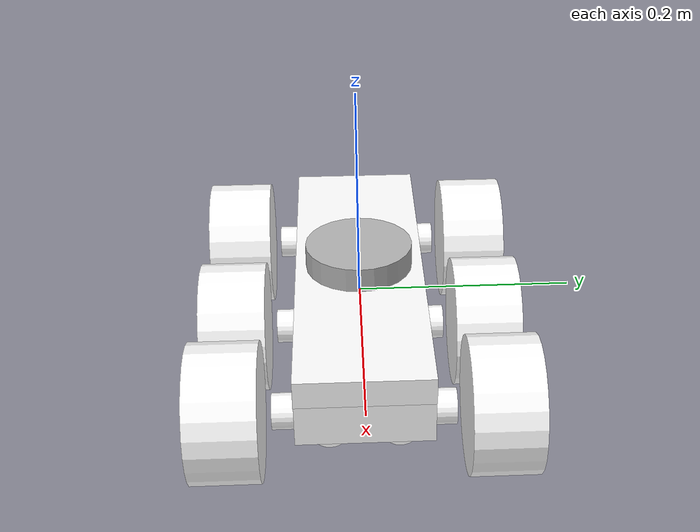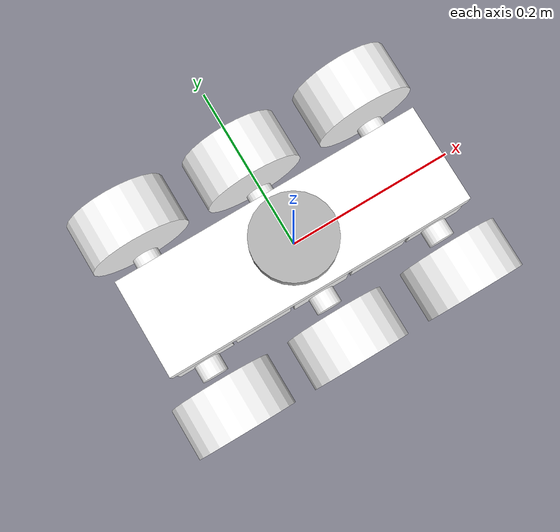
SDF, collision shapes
<sdf version="1.9">
 <model name="wildthumper">
  <static>0</static>
  <link name="base_link">
   <inertial>
    <mass>0.01</mass>
    <inertia><ixx>0.01</ixx><ixy>0</ixy><ixz>0</ixz><iyy>0.01</iyy><iyz>0</iyz><izz>0.01</izz></inertia>
   </inertial>
   <collision name="base_link_collision">
    <geometry><box><size>0.001 0.001 0.001</size></box></geometry>
   </collision>
   <visual name="base_link_visual">
    <geometry><box><size>0.001 0.001 0.001</size></box></geometry>
    <material><diffuse>1 0.3125 0 1</diffuse><ambient>1 0.3125 0 1</ambient></material>
   </visual>
   <sensor name="camera_sensor" type="camera">
    <pose>0.1 0 0.15 0 0.2 0</pose>
    <camera>
     <horizontal_fov>1.39626</horizontal_fov>
     <image><width>640</width><height>480</height><format>R8G8B8</format></image>
     <clip><near>0.02</near><far>300</far></clip>
    </camera>
    <always_on>1</always_on>
    <update_rate>30</update_rate>
    <visualize>true</visualize>
    <topic>/camera</topic>
   </sensor>
  </link>
  <link name="lidar_link">
   <inertial>
    <mass>0.1</mass>
    <inertia><ixx>0.0001</ixx><ixy>0</ixy><ixz>0</ixz><iyy>0.0001</iyy><iyz>0</iyz><izz>0.0001</izz></inertia>
   </inertial>
   <collision name="lidar_link_collision">
    <geometry><cylinder><radius>0.05</radius><length>0.1</length></cylinder></geometry>
   </collision>
   <visual name="lidar_link_visual">
    <geometry><cylinder><radius>0.05</radius><length>0.1</length></cylinder></geometry>
    <material>
     <ambient>0.2 0.2 0.2 1</ambient>
     <diffuse>0.7 0.7 0.7 1</diffuse>
     <specular>0.1 0.1 0.1 1</specular>
    </material>
   </visual>
   <sensor name="gpu_lidar" type="gpu_lidar">
    <pose>0 0 0.05 0 0 0</pose>
    <topic>/lidar</topic>
    <update_rate>10</update_rate>
    <ray>
     <scan>
      <horizontal>
       <samples>360</samples>
       <resolution>1</resolution>
       <min_angle>-3.14</min_angle>
       <max_angle>3.14</max_angle>
      </horizontal>
      <vertical>
       <samples>1</samples>
       <resolution>1</resolution>
       <min_angle>0</min_angle>
       <max_angle>0</max_angle>
      </vertical>
     </scan>
     <range><min>0.005</min><max>10.0</max><resolution>0.001</resolution></range>
    </ray>
    <always_on>1</always_on>
    <visualize>true</visualize>
   </sensor>
  </link>
  <joint name="lidar_joint" type="fixed"><parent>top_chassis_link</parent><child>lidar_link</child></joint>
  <joint name="front_small_chassis_joint" type="fixed">
   <pose relative_to="base_link">0.075 0 -0.02 0 0 0</pose>
   <parent>base_link</parent>
   <child>front_small_chassis_link</child>
   <axis>
    <dynamics><damping>1.0</damping></dynamics>
    <xyz>0 0 1</xyz>
    <limit><lower>-1e16</lower><upper>1e16</upper></limit>
   </axis>
  </joint>
  <link name="front_small_chassis_link">
   <pose relative_to="front_small_chassis_joint">0 0 0 0 0 0</pose>
   <inertial>
    <mass>0.2</mass>
    <inertia>
     <ixx>0.0002666666666666667</ixx>
     <ixy>0</ixy>
     <ixz>0</ixz>
     <iyy>0.0001083333333333333</iyy>
     <iyz>0</iyz>
     <izz>0.0003216666666666667</izz>
    </inertia>
   </inertial>
   <collision name="front_small_chassis_link_collision">
    <geometry><box><size>0.07000000000000001 0.12 0.04</size></box></geometry>
   </collision>
   <visual name="front_small_chassis_link_visual">
    <geometry>
     <mesh>
      <scale>1 1 1</scale>
      <uri>model://wildthumper/meshes/bases/small_chassis_with_frame_connector.dae</uri>
     </mesh>
    </geometry>
    <material>
     <ambient>1 1 1</ambient>
     <diffuse>1 1 1</diffuse>
     <specular>1 1 1</specular>
     <pbr>
      <metal>
       <albedo_map>model://wildthumper/materials/textures/black_metal/black_metal_diffuse.jpg</albedo_map>
       <metalness_map>model://wildthumper/materials/textures/black_metal/black_metal_metallic.jpg</metalness_map>
       <normal_map>model://wildthumper/materials/textures/black_metal/black_metal_normal.jpg</normal_map>
       <roughness_map>model://wildthumper/materials/textures/black_metal/black_metal_roughness.jpg</roughness_map>
       <roughness>1.0</roughness>
       <metalness>1.0</metalness>
      </metal>
     </pbr>
    </material>
   </visual>
  </link>
  <joint name="front_wheel_chassis_short_joint" type="fixed">
   <pose relative_to="base_link">0.15 0 -0.02 0 0 0</pose>
   <parent>base_link</parent>
   <child>front_wheel_chassis_short_link</child>
   <axis>
    <dynamics><damping>1.0</damping></dynamics>
    <xyz>0 0 1</xyz>
    <limit><lower>-1e16</lower><upper>1e16</upper></limit>
   </axis>
  </joint>
  <link name="front_wheel_chassis_short_link">
   <pose relative_to="front_wheel_chassis_short_joint">0 0 0 0 0 0</pose>
   <inertial>
    <mass>0.2</mass>
    <inertia>
     <ixx>0.0002666666666666667</ixx>
     <ixy>0</ixy>
     <ixz>0</ixz>
     <iyy>0.0001083333333333333</iyy>
     <iyz>0</iyz>
     <izz>0.0003216666666666667</izz>
    </inertia>
   </inertial>
   <collision name="front_wheel_chassis_short_link_collision">
    <geometry><box><size>0.07000000000000001 0.12 0.04</size></box></geometry>
   </collision>
   <visual name="front_wheel_chassis_short_link_visual">
    <geometry>
     <mesh><scale>1 1 1</scale><uri>model://wildthumper/meshes/bases/wheel_chassis_short.dae</uri></mesh>
    </geometry>
    <material>
     <ambient>1 1 1</ambient>
     <diffuse>1 1 1</diffuse>
     <specular>1 1 1</specular>
     <pbr>
      <metal>
       <albedo_map>model://wildthumper/materials/textures/black_metal/black_metal_diffuse.jpg</albedo_map>
       <metalness_map>model://wildthumper/materials/textures/black_metal/black_metal_metallic.jpg</metalness_map>
       <normal_map>model://wildthumper/materials/textures/black_metal/black_metal_normal.jpg</normal_map>
       <roughness_map>model://wildthumper/materials/textures/black_metal/black_metal_roughness.jpg</roughness_map>
       <roughness>1.0</roughness>
       <metalness>1.0</metalness>
      </metal>
     </pbr>
    </material>
   </visual>
  </link>
  <joint name="front_left_motor_asm_joint" type="revolute">
   <pose relative_to="front_wheel_chassis_short_link">0 0.03 -0.01 0 0 0</pose>
   <parent>front_wheel_chassis_short_link</parent>
   <child>front_left_motor_asm_link</child>
   <axis>
    <xyz>1 0 0</xyz>
    <limit><lower>-0.5</lower><upper>0.5</upper><effort>50</effort><velocity>10</velocity></limit>
    <dynamics>
     <damping>0.7</damping>
     <friction>0</friction>
     <spring_reference>0</spring_reference>
     <spring_stiffness>3</spring_stiffness>
    </dynamics>
   </axis>
   <physics>
    <provide_feedback>true</provide_feedback>
    <ode>
     <implicit_spring_damper>true</implicit_spring_damper>
     <cfm_damping>true</cfm_damping>
     <limit><cfm>0.0</cfm><erp>0.2</erp></limit>
     <provide_feedback>true</provide_feedback>
    </ode>
   </physics>
  </joint>
  <link name="front_left_motor_asm_link">
   <pose relative_to="front_left_motor_asm_joint">0 0 0 0 0 0</pose>
   <inertial>
    <pose degrees="true">0 0.025 0 90 0 0</pose>
    <mass>0.1</mass>
    <inertia>
     <ixx>2.723333333333334e-05</ixx>
     <ixy>0</ixy>
     <ixz>0</ixz>
     <iyy>2.723333333333334e-05</iyy>
     <iyz>0</iyz>
     <izz>1.28e-05</izz>
    </inertia>
   </inertial>
   <collision name="front_left_motor_asm_link_collision">
    <pose degrees="true">0 0 0 0 90 0</pose>
    <geometry><cylinder><length>0.064</length><radius>0.016</radius></cylinder></geometry>
   </collision>
   <collision name="front_left_motor_asm_link_collision_1">
    <pose degrees="true">0 0.025 0 90 0 0</pose>
    <geometry><cylinder><length>0.05</length><radius>0.016</radius></cylinder></geometry>
   </collision>
   <visual name="front_left_motor_asm_link_visual">
    <geometry>
     <mesh><scale>1 1 1</scale><uri>model://wildthumper/meshes/bases/left_motor_asm.dae</uri></mesh>
    </geometry>
    <material>
     <ambient>1 1 1</ambient>
     <diffuse>1 1 1</diffuse>
     <specular>1 1 1</specular>
     <pbr>
      <metal>
       <albedo_map>model://wildthumper/materials/textures/black_metal/black_metal_diffuse.jpg</albedo_map>
       <metalness_map>model://wildthumper/materials/textures/black_metal/black_metal_metallic.jpg</metalness_map>
       <normal_map>model://wildthumper/materials/textures/black_metal/black_metal_normal.jpg</normal_map>
       <roughness_map>model://wildthumper/materials/textures/black_metal/black_metal_roughness.jpg</roughness_map>
       <roughness>1.0</roughness>
       <metalness>1.0</metalness>
      </metal>
     </pbr>
    </material>
   </visual>
  </link>
  <joint name="front_left_wheel_joint" type="revolute">
   <pose relative_to="front_left_motor_asm_link">0 0.09 0 0 0 0</pose>
   <parent>front_left_motor_asm_link</parent>
   <child>front_left_wheel_link</child>
   <axis>
    <xyz>0 1 0</xyz>
    <limit><lower>-1e16</lower><upper>1e16</upper></limit>
    <dynamics><damping>0.02</damping></dynamics>
   </axis>
  </joint>
  <link name="front_left_wheel_link">
   <pose relative_to="front_left_wheel_joint">0 0 0 0 0 0</pose>
   <inertial>
    <pose degrees="true">0 0 0 90 0 0</pose>
    <mass>0.19</mass>
    <inertia>
     <ixx>0.0002022409166666667</ixx>
     <ixy>0</ixy>
     <ixz>0</ixz>
     <iyy>0.0002022409166666667</iyy>
     <iyz>1.203706215242022e-35</iyz>
     <izz>0.0002973904999999999</izz>
    </inertia>
   </inertial>
   <collision name="front_left_wheel_link_collision">
    <pose degrees="true">0 0 0 90 0 0</pose>
    <geometry><cylinder><length>0.062</length><radius>0.062</radius></cylinder></geometry>
    <surface>
     <friction>
      <ode><mu>10.0</mu><mu2>5.0</mu2><fdir1>1 0 0</fdir1><slip1>0.0</slip1><slip2>0.0</slip2></ode>
     </friction>
    </surface>
   </collision>
   <collision name="front_left_wheel_link_fixed_joint_lump__front_left_wheel_adapter_link_collision_1">
    <pose degrees="true">0 0 0 90 0 0</pose>
    <geometry><cylinder><length>0.024</length><radius>0.005</radius></cylinder></geometry>
   </collision>
   <collision name="front_left_wheel_link_fixed_joint_lump__front_left_wheel_rim_link_collision_2">
    <pose degrees="true">0 0 0 90 0 0</pose>
    <geometry><cylinder><length>0.05</length><radius>0.03</radius></cylinder></geometry>
   </collision>
   <visual name="front_left_wheel_link_visual">
    <geometry>
     <mesh><scale>1 1 1</scale><uri>model://wildthumper/meshes/wheels/left_wheel_tyre.dae</uri></mesh>
    </geometry>
    <material>
     <ambient>1 1 1</ambient>
     <diffuse>1 1 1</diffuse>
     <specular>1 1 1</specular>
     <pbr>
      <metal>
       <albedo_map>model://wildthumper/materials/textures/rubber_01/rubber_01_diffuse.jpg</albedo_map>
       <normal_map>model://wildthumper/materials/textures/rubber_01/rubber_01_normal.jpg</normal_map>
       <roughness_map>model://wildthumper/materials/textures/rubber_01/rubber_01_roughness.jpg</roughness_map>
       <roughness>1.0</roughness>
       <metalness>0.0</metalness>
      </metal>
     </pbr>
    </material>
   </visual>
   <visual name="front_left_wheel_link_fixed_joint_lump__front_left_wheel_adapter_link_visual_1">
    <geometry>
     <mesh><scale>1 1 1</scale><uri>model://wildthumper/meshes/wheels/left_wheel_adapter.dae</uri></mesh>
    </geometry>
    <material>
     <ambient>1 1 1</ambient>
     <diffuse>1 1 1</diffuse>
     <specular>1 1 1</specular>
     <pbr>
      <metal>
       <albedo_map>model://wildthumper/materials/textures/silver_metal/silver_metal_diffuse.jpg</albedo_map>
       <metalness_map>model://wildthumper/materials/textures/silver_metal/silver_metal_metallic.jpg</metalness_map>
       <normal_map>model://wildthumper/materials/textures/silver_metal/silver_metal_normal.jpg</normal_map>
       <roughness_map>model://wildthumper/materials/textures/silver_metal/silver_metal_roughness.jpg</roughness_map>
       <roughness>1.0</roughness>
       <metalness>1.0</metalness>
      </metal>
     </pbr>
    </material>
   </visual>
   <visual name="front_left_wheel_link_fixed_joint_lump__front_left_wheel_rim_link_visual_2">
    <geometry>
     <mesh><scale>1 1 1</scale><uri>model://wildthumper/meshes/wheels/left_wheel_rim.dae</uri></mesh>
    </geometry>
    <material>
     <ambient>1 1 1</ambient>
     <diffuse>1 1 1</diffuse>
     <specular>1 1 1</specular>
     <pbr>
      <metal>
       <albedo_map>model://wildthumper/materials/textures/red_metal/red_metal_diffuse.jpg</albedo_map>
       <metalness_map>model://wildthumper/materials/textures/red_metal/red_metal_metallic.jpg</metalness_map>
       <normal_map>model://wildthumper/materials/textures/red_metal/red_metal_normal.jpg</normal_map>
       <roughness_map>model://wildthumper/materials/textures/red_metal/red_metal_roughness.jpg</roughness_map>
       <roughness>1.0</roughness>
       <metalness>1.0</metalness>
      </metal>
     </pbr>
    </material>
   </visual>
  </link>
  <joint name="front_right_motor_asm_joint" type="revolute">
   <pose relative_to="front_wheel_chassis_short_link">0 -0.03 -0.01 0 0 0</pose>
   <parent>front_wheel_chassis_short_link</parent>
   <child>front_right_motor_asm_link</child>
   <axis>
    <xyz>1 0 0</xyz>
    <limit><lower>-0.5</lower><upper>0.5</upper><effort>50</effort><velocity>10</velocity></limit>
    <dynamics>
     <damping>0.7</damping>
     <friction>0</friction>
     <spring_reference>0</spring_reference>
     <spring_stiffness>3</spring_stiffness>
    </dynamics>
   </axis>
  </joint>
  <link name="front_right_motor_asm_link">
   <pose relative_to="front_right_motor_asm_joint">0 0 0 0 0 0</pose>
   <inertial>
    <pose degrees="true">0 -0.025 0 90 0 0</pose>
    <mass>0.1</mass>
    <inertia>
     <ixx>2.723333333333334e-05</ixx>
     <ixy>0</ixy>
     <ixz>0</ixz>
     <iyy>2.723333333333334e-05</iyy>
     <iyz>0</iyz>
     <izz>1.28e-05</izz>
    </inertia>
   </inertial>
   <collision name="front_right_motor_asm_link_collision">
    <pose degrees="true">0 0 0 0 90 0</pose>
    <geometry><cylinder><length>0.064</length><radius>0.016</radius></cylinder></geometry>
   </collision>
   <collision name="front_right_motor_asm_link_collision_1">
    <pose degrees="true">0 -0.025 0 90 0 0</pose>
    <geometry><cylinder><length>0.05</length><radius>0.016</radius></cylinder></geometry>
   </collision>
   <visual name="front_right_motor_asm_link_visual">
    <geometry>
     <mesh><scale>1 1 1</scale><uri>model://wildthumper/meshes/bases/right_motor_asm.dae</uri></mesh>
    </geometry>
    <material>
     <ambient>1 1 1</ambient>
     <diffuse>1 1 1</diffuse>
     <specular>1 1 1</specular>
     <pbr>
      <metal>
       <albedo_map>model://wildthumper/materials/textures/black_metal/black_metal_diffuse.jpg</albedo_map>
       <metalness_map>model://wildthumper/materials/textures/black_metal/black_metal_metallic.jpg</metalness_map>
       <normal_map>model://wildthumper/materials/textures/black_metal/black_metal_normal.jpg</normal_map>
       <roughness_map>model://wildthumper/materials/textures/black_metal/black_metal_roughness.jpg</roughness_map>
       <roughness>1.0</roughness>
       <metalness>1.0</metalness>
      </metal>
     </pbr>
    </material>
   </visual>
  </link>
  <joint name="front_right_wheel_joint" type="revolute">
   <pose relative_to="front_right_motor_asm_link">0 -0.09 0 0 0 0</pose>
   <parent>front_right_motor_asm_link</parent>
   <child>front_right_wheel_link</child>
   <axis>
    <xyz>0 1 0</xyz>
    <limit><lower>-1e16</lower><upper>1e16</upper></limit>
    <dynamics><damping>0.02</damping></dynamics>
   </axis>
  </joint>
  <link name="front_right_wheel_link">
   <pose relative_to="front_right_wheel_joint">0 0 0 0 0 0</pose>
   <inertial>
    <pose degrees="true">0 0 0 90 0 0</pose>
    <mass>0.19</mass>
    <inertia>
     <ixx>0.0002022409166666667</ixx>
     <ixy>0</ixy>
     <ixz>0</ixz>
     <iyy>0.0002022409166666667</iyy>
     <iyz>1.203706215242022e-35</iyz>
     <izz>0.0002973904999999999</izz>
    </inertia>
   </inertial>
   <collision name="front_right_wheel_link_collision">
    <pose degrees="true">0 0 0 90 0 0</pose>
    <geometry><cylinder><length>0.062</length><radius>0.062</radius></cylinder></geometry>
    <surface>
     <friction>
      <ode><mu>10.0</mu><mu2>5.0</mu2><fdir1>1 0 0</fdir1><slip1>0.0</slip1><slip2>0.0</slip2></ode>
     </friction>
    </surface>
   </collision>
   <collision name="front_right_wheel_link_fixed_joint_lump__front_right_wheel_adapter_link_collision_1">
    <pose degrees="true">0 0 0 90 0 0</pose>
    <geometry><cylinder><length>0.024</length><radius>0.005</radius></cylinder></geometry>
   </collision>
   <collision name="front_right_wheel_link_fixed_joint_lump__front_right_wheel_rim_link_collision_2">
    <pose degrees="true">0 0 0 90 0 0</pose>
    <geometry><cylinder><length>0.05</length><radius>0.03</radius></cylinder></geometry>
   </collision>
   <visual name="front_right_wheel_link_visual">
    <geometry>
     <mesh><scale>1 1 1</scale><uri>model://wildthumper/meshes/wheels/right_wheel_tyre.dae</uri></mesh>
    </geometry>
    <material>
     <ambient>1 1 1</ambient>
     <diffuse>1 1 1</diffuse>
     <specular>1 1 1</specular>
     <pbr>
      <metal>
       <albedo_map>model://wildthumper/materials/textures/rubber_01/rubber_01_diffuse.jpg</albedo_map>
       <normal_map>model://wildthumper/materials/textures/rubber_01/rubber_01_normal.jpg</normal_map>
       <roughness_map>model://wildthumper/materials/textures/rubber_01/rubber_01_roughness.jpg</roughness_map>
       <roughness>1.0</roughness>
       <metalness>0.0</metalness>
      </metal>
     </pbr>
    </material>
   </visual>
   <visual name="front_right_wheel_link_fixed_joint_lump__front_right_wheel_adapter_link_visual_1">
    <geometry>
     <mesh><scale>1 1 1</scale><uri>model://wildthumper/meshes/wheels/right_wheel_adapter.dae</uri></mesh>
    </geometry>
    <material>
     <ambient>1 1 1</ambient>
     <diffuse>1 1 1</diffuse>
     <specular>1 1 1</specular>
     <pbr>
      <metal>
       <albedo_map>model://wildthumper/materials/textures/silver_metal/silver_metal_diffuse.jpg</albedo_map>
       <metalness_map>model://wildthumper/materials/textures/silver_metal/silver_metal_metallic.jpg</metalness_map>
       <normal_map>model://wildthumper/materials/textures/silver_metal/silver_metal_normal.jpg</normal_map>
       <roughness_map>model://wildthumper/materials/textures/silver_metal/silver_metal_roughness.jpg</roughness_map>
       <roughness>1.0</roughness>
       <metalness>1.0</metalness>
      </metal>
     </pbr>
    </material>
   </visual>
   <visual name="front_right_wheel_link_fixed_joint_lump__front_right_wheel_rim_link_visual_2">
    <geometry>
     <mesh><scale>1 1 1</scale><uri>model://wildthumper/meshes/wheels/right_wheel_rim.dae</uri></mesh>
    </geometry>
    <material>
     <ambient>1 1 1</ambient>
     <diffuse>1 1 1</diffuse>
     <specular>1 1 1</specular>
     <pbr>
      <metal>
       <albedo_map>model://wildthumper/materials/textures/red_metal/red_metal_diffuse.jpg</albedo_map>
       <metalness_map>model://wildthumper/materials/textures/red_metal/red_metal_metallic.jpg</metalness_map>
       <normal_map>model://wildthumper/materials/textures/red_metal/red_metal_normal.jpg</normal_map>
       <roughness_map>model://wildthumper/materials/textures/red_metal/red_metal_roughness.jpg</roughness_map>
       <roughness>1.0</roughness>
       <metalness>1.0</metalness>
      </metal>
     </pbr>
    </material>
   </visual>
  </link>
  <joint name="mid_wheel_chassis_long_joint" type="fixed">
   <pose relative_to="base_link">0 0 -0.025 0 0 0</pose>
   <parent>base_link</parent>
   <child>mid_wheel_chassis_long_link</child>
   <axis>
    <dynamics><damping>1.0</damping></dynamics>
    <xyz>0 0 1</xyz>
    <limit><lower>-1e16</lower><upper>1e16</upper></limit>
   </axis>
  </joint>
  <link name="mid_wheel_chassis_long_link">
   <pose relative_to="mid_wheel_chassis_long_joint">0 0 0 0 0 0</pose>
   <inertial>
    <mass>0.2</mass>
    <inertia>
     <ixx>0.0002816666666666667</ixx>
     <ixy>0</ixy>
     <ixz>0</ixz>
     <iyy>0.0001233333333333334</iyy>
     <iyz>0</iyz>
     <izz>0.0003216666666666667</izz>
    </inertia>
   </inertial>
   <collision name="mid_wheel_chassis_long_link_collision">
    <geometry><box><size>0.07000000000000001 0.12 0.05</size></box></geometry>
   </collision>
   <visual name="mid_wheel_chassis_long_link_visual">
    <pose>0 0 0.005 0 0 0</pose>
    <geometry>
     <mesh><scale>1 1 1</scale><uri>model://wildthumper/meshes/bases/wheel_chassis_long.dae</uri></mesh>
    </geometry>
    <material>
     <ambient>1 1 1</ambient>
     <diffuse>1 1 1</diffuse>
     <specular>1 1 1</specular>
     <pbr>
      <metal>
       <albedo_map>model://wildthumper/materials/textures/black_metal/black_metal_diffuse.jpg</albedo_map>
       <metalness_map>model://wildthumper/materials/textures/black_metal/black_metal_metallic.jpg</metalness_map>
       <normal_map>model://wildthumper/materials/textures/black_metal/black_metal_normal.jpg</normal_map>
       <roughness_map>model://wildthumper/materials/textures/black_metal/black_metal_roughness.jpg</roughness_map>
       <roughness>1.0</roughness>
       <metalness>1.0</metalness>
      </metal>
     </pbr>
    </material>
   </visual>
  </link>
  <joint name="mid_left_motor_asm_joint" type="revolute">
   <pose relative_to="mid_wheel_chassis_long_link">0 0.03 -0.015 0 0 0</pose>
   <parent>mid_wheel_chassis_long_link</parent>
   <child>mid_left_motor_asm_link</child>
   <axis>
    <xyz>1 0 0</xyz>
    <limit><lower>-0.5</lower><upper>0.5</upper><effort>50</effort><velocity>10</velocity></limit>
    <dynamics>
     <damping>0.7</damping>
     <friction>0</friction>
     <spring_reference>0</spring_reference>
     <spring_stiffness>3</spring_stiffness>
    </dynamics>
   </axis>
  </joint>
  <link name="mid_left_motor_asm_link">
   <pose relative_to="mid_left_motor_asm_joint">0 0 0 0 0 0</pose>
   <inertial>
    <pose degrees="true">0 0.025 0 90 0 0</pose>
    <mass>0.1</mass>
    <inertia>
     <ixx>2.723333333333334e-05</ixx>
     <ixy>0</ixy>
     <ixz>0</ixz>
     <iyy>2.723333333333334e-05</iyy>
     <iyz>0</iyz>
     <izz>1.28e-05</izz>
    </inertia>
   </inertial>
   <collision name="mid_left_motor_asm_link_collision">
    <pose degrees="true">0 0 0 0 90 0</pose>
    <geometry><cylinder><length>0.064</length><radius>0.016</radius></cylinder></geometry>
   </collision>
   <collision name="mid_left_motor_asm_link_collision_1">
    <pose degrees="true">0 0.025 0 90 0 0</pose>
    <geometry><cylinder><length>0.05</length><radius>0.016</radius></cylinder></geometry>
   </collision>
   <visual name="mid_left_motor_asm_link_visual">
    <geometry>
     <mesh><scale>1 1 1</scale><uri>model://wildthumper/meshes/bases/left_motor_asm.dae</uri></mesh>
    </geometry>
    <material>
     <ambient>1 1 1</ambient>
     <diffuse>1 1 1</diffuse>
     <specular>1 1 1</specular>
     <pbr>
      <metal>
       <albedo_map>model://wildthumper/materials/textures/black_metal/black_metal_diffuse.jpg</albedo_map>
       <metalness_map>model://wildthumper/materials/textures/black_metal/black_metal_metallic.jpg</metalness_map>
       <normal_map>model://wildthumper/materials/textures/black_metal/black_metal_normal.jpg</normal_map>
       <roughness_map>model://wildthumper/materials/textures/black_metal/black_metal_roughness.jpg</roughness_map>
       <roughness>1.0</roughness>
       <metalness>1.0</metalness>
      </metal>
     </pbr>
    </material>
   </visual>
  </link>
  <joint name="mid_left_wheel_joint" type="revolute">
   <pose relative_to="mid_left_motor_asm_link">0 0.09 0 0 0 0</pose>
   <parent>mid_left_motor_asm_link</parent>
   <child>mid_left_wheel_link</child>
   <axis>
    <xyz>0 1 0</xyz>
    <limit><lower>-1e16</lower><upper>1e16</upper></limit>
    <dynamics><damping>0.02</damping></dynamics>
   </axis>
  </joint>
  <link name="mid_left_wheel_link">
   <pose relative_to="mid_left_wheel_joint">0 0 0 0 0 0</pose>
   <inertial>
    <pose degrees="true">0 0 0 90 0 0</pose>
    <mass>0.19</mass>
    <inertia>
     <ixx>0.0002022409166666667</ixx>
     <ixy>0</ixy>
     <ixz>0</ixz>
     <iyy>0.0002022409166666667</iyy>
     <iyz>1.203706215242022e-35</iyz>
     <izz>0.0002973904999999999</izz>
    </inertia>
   </inertial>
   <collision name="mid_left_wheel_link_collision">
    <pose degrees="true">0 0 0 90 0 0</pose>
    <geometry><cylinder><length>0.062</length><radius>0.062</radius></cylinder></geometry>
    <surface>
     <friction>
      <ode><mu>10.0</mu><mu2>5.0</mu2><fdir1>1 0 0</fdir1><slip1>0.0</slip1><slip2>0.0</slip2></ode>
     </friction>
    </surface>
   </collision>
   <collision name="mid_left_wheel_link_fixed_joint_lump__mid_left_wheel_adapter_link_collision_1">
    <pose degrees="true">0 0 0 90 0 0</pose>
    <geometry><cylinder><length>0.024</length><radius>0.005</radius></cylinder></geometry>
   </collision>
   <collision name="mid_left_wheel_link_fixed_joint_lump__mid_left_wheel_rim_link_collision_2">
    <pose degrees="true">0 0 0 90 0 0</pose>
    <geometry><cylinder><length>0.05</length><radius>0.03</radius></cylinder></geometry>
   </collision>
   <visual name="mid_left_wheel_link_visual">
    <geometry>
     <mesh><scale>1 1 1</scale><uri>model://wildthumper/meshes/wheels/left_wheel_tyre.dae</uri></mesh>
    </geometry>
    <material>
     <ambient>1 1 1</ambient>
     <diffuse>1 1 1</diffuse>
     <specular>1 1 1</specular>
     <pbr>
      <metal>
       <albedo_map>model://wildthumper/materials/textures/rubber_01/rubber_01_diffuse.jpg</albedo_map>
       <normal_map>model://wildthumper/materials/textures/rubber_01/rubber_01_normal.jpg</normal_map>
       <roughness_map>model://wildthumper/materials/textures/rubber_01/rubber_01_roughness.jpg</roughness_map>
       <roughness>1.0</roughness>
       <metalness>0.0</metalness>
      </metal>
     </pbr>
    </material>
   </visual>
   <visual name="mid_left_wheel_link_fixed_joint_lump__mid_left_wheel_adapter_link_visual_1">
    <geometry>
     <mesh><scale>1 1 1</scale><uri>model://wildthumper/meshes/wheels/left_wheel_adapter.dae</uri></mesh>
    </geometry>
    <material>
     <ambient>1 1 1</ambient>
     <diffuse>1 1 1</diffuse>
     <specular>1 1 1</specular>
     <pbr>
      <metal>
       <albedo_map>model://wildthumper/materials/textures/silver_metal/silver_metal_diffuse.jpg</albedo_map>
       <metalness_map>model://wildthumper/materials/textures/silver_metal/silver_metal_metallic.jpg</metalness_map>
       <normal_map>model://wildthumper/materials/textures/silver_metal/silver_metal_normal.jpg</normal_map>
       <roughness_map>model://wildthumper/materials/textures/silver_metal/silver_metal_roughness.jpg</roughness_map>
       <roughness>1.0</roughness>
       <metalness>1.0</metalness>
      </metal>
     </pbr>
    </material>
   </visual>
   <visual name="mid_left_wheel_link_fixed_joint_lump__mid_left_wheel_rim_link_visual_2">
    <geometry>
     <mesh><scale>1 1 1</scale><uri>model://wildthumper/meshes/wheels/left_wheel_rim.dae</uri></mesh>
    </geometry>
    <material>
     <ambient>1 1 1</ambient>
     <diffuse>1 1 1</diffuse>
     <specular>1 1 1</specular>
     <pbr>
      <metal>
       <albedo_map>model://wildthumper/materials/textures/red_metal/red_metal_diffuse.jpg</albedo_map>
       <metalness_map>model://wildthumper/materials/textures/red_metal/red_metal_metallic.jpg</metalness_map>
       <normal_map>model://wildthumper/materials/textures/red_metal/red_metal_normal.jpg</normal_map>
       <roughness_map>model://wildthumper/materials/textures/red_metal/red_metal_roughness.jpg</roughness_map>
       <roughness>1.0</roughness>
       <metalness>1.0</metalness>
      </metal>
     </pbr>
    </material>
   </visual>
  </link>
  <joint name="mid_right_motor_asm_joint" type="revolute">
   <pose relative_to="mid_wheel_chassis_long_link">0 -0.03 -0.015 0 0 0</pose>
   <parent>mid_wheel_chassis_long_link</parent>
   <child>mid_right_motor_asm_link</child>
   <axis>
    <xyz>1 0 0</xyz>
    <limit><lower>-0.5</lower><upper>0.5</upper><effort>50</effort><velocity>10</velocity></limit>
    <dynamics>
     <damping>0.7</damping>
     <friction>0</friction>
     <spring_reference>0</spring_reference>
     <spring_stiffness>3</spring_stiffness>
    </dynamics>
   </axis>
  </joint>
  <link name="mid_right_motor_asm_link">
   <pose relative_to="mid_right_motor_asm_joint">0 0 0 0 0 0</pose>
   <inertial>
    <pose degrees="true">0 -0.025 0 90 0 0</pose>
    <mass>0.1</mass>
    <inertia>
     <ixx>2.723333333333334e-05</ixx>
     <ixy>0</ixy>
     <ixz>0</ixz>
     <iyy>2.723333333333334e-05</iyy>
     <iyz>0</iyz>
     <izz>1.28e-05</izz>
    </inertia>
   </inertial>
   <collision name="mid_right_motor_asm_link_collision">
    <pose degrees="true">0 0 0 0 90 0</pose>
    <geometry><cylinder><length>0.064</length><radius>0.016</radius></cylinder></geometry>
   </collision>
   <collision name="mid_right_motor_asm_link_collision_1">
    <pose degrees="true">0 -0.025 0 90 0 0</pose>
    <geometry><cylinder><length>0.05</length><radius>0.016</radius></cylinder></geometry>
   </collision>
   <visual name="mid_right_motor_asm_link_visual">
    <geometry>
     <mesh><scale>1 1 1</scale><uri>model://wildthumper/meshes/bases/right_motor_asm.dae</uri></mesh>
    </geometry>
    <material>
     <ambient>1 1 1</ambient>
     <diffuse>1 1 1</diffuse>
     <specular>1 1 1</specular>
     <pbr>
      <metal>
       <albedo_map>model://wildthumper/materials/textures/black_metal/black_metal_diffuse.jpg</albedo_map>
       <metalness_map>model://wildthumper/materials/textures/black_metal/black_metal_metallic.jpg</metalness_map>
       <normal_map>model://wildthumper/materials/textures/black_metal/black_metal_normal.jpg</normal_map>
       <roughness_map>model://wildthumper/materials/textures/black_metal/black_metal_roughness.jpg</roughness_map>
       <roughness>1.0</roughness>
       <metalness>1.0</metalness>
      </metal>
     </pbr>
    </material>
   </visual>
  </link>
  <joint name="mid_right_wheel_joint" type="revolute">
   <pose relative_to="mid_right_motor_asm_link">0 -0.09 0 0 0 0</pose>
   <parent>mid_right_motor_asm_link</parent>
   <child>mid_right_wheel_link</child>
   <axis>
    <xyz>0 1 0</xyz>
    <limit><lower>-1e16</lower><upper>1e16</upper></limit>
    <dynamics><damping>0.02</damping></dynamics>
   </axis>
  </joint>
  <link name="mid_right_wheel_link">
   <pose relative_to="mid_right_wheel_joint">0 0 0 0 0 0</pose>
   <inertial>
    <pose degrees="true">0 0 0 90 0 0</pose>
    <mass>0.19</mass>
    <inertia>
     <ixx>0.0002022409166666667</ixx>
     <ixy>0</ixy>
     <ixz>0</ixz>
     <iyy>0.0002022409166666667</iyy>
     <iyz>1.203706215242022e-35</iyz>
     <izz>0.0002973904999999999</izz>
    </inertia>
   </inertial>
   <collision name="mid_right_wheel_link_collision">
    <pose degrees="true">0 0 0 90 0 0</pose>
    <geometry><cylinder><length>0.062</length><radius>0.062</radius></cylinder></geometry>
    <surface>
     <friction>
      <ode><mu>10.0</mu><mu2>5.0</mu2><fdir1>1 0 0</fdir1><slip1>0.0</slip1><slip2>0.0</slip2></ode>
     </friction>
    </surface>
   </collision>
   <collision name="mid_right_wheel_link_fixed_joint_lump__mid_right_wheel_adapter_link_collision_1">
    <pose degrees="true">0 0 0 90 0 0</pose>
    <geometry><cylinder><length>0.024</length><radius>0.005</radius></cylinder></geometry>
   </collision>
   <collision name="mid_right_wheel_link_fixed_joint_lump__mid_right_wheel_rim_link_collision_2">
    <pose degrees="true">0 0 0 90 0 0</pose>
    <geometry><cylinder><length>0.05</length><radius>0.03</radius></cylinder></geometry>
   </collision>
   <visual name="mid_right_wheel_link_visual">
    <geometry>
     <mesh><scale>1 1 1</scale><uri>model://wildthumper/meshes/wheels/right_wheel_tyre.dae</uri></mesh>
    </geometry>
    <material>
     <ambient>1 1 1</ambient>
     <diffuse>1 1 1</diffuse>
     <specular>1 1 1</specular>
     <pbr>
      <metal>
       <albedo_map>model://wildthumper/materials/textures/rubber_01/rubber_01_diffuse.jpg</albedo_map>
       <normal_map>model://wildthumper/materials/textures/rubber_01/rubber_01_normal.jpg</normal_map>
       <roughness_map>model://wildthumper/materials/textures/rubber_01/rubber_01_roughness.jpg</roughness_map>
       <roughness>1.0</roughness>
       <metalness>0.0</metalness>
      </metal>
     </pbr>
    </material>
   </visual>
   <visual name="mid_right_wheel_link_fixed_joint_lump__mid_right_wheel_adapter_link_visual_1">
    <geometry>
     <mesh><scale>1 1 1</scale><uri>model://wildthumper/meshes/wheels/right_wheel_adapter.dae</uri></mesh>
    </geometry>
    <material>
     <ambient>1 1 1</ambient>
     <diffuse>1 1 1</diffuse>
     <specular>1 1 1</specular>
     <pbr>
      <metal>
       <albedo_map>model://wildthumper/materials/textures/silver_metal/silver_metal_diffuse.jpg</albedo_map>
       <metalness_map>model://wildthumper/materials/textures/silver_metal/silver_metal_metallic.jpg</metalness_map>
       <normal_map>model://wildthumper/materials/textures/silver_metal/silver_metal_normal.jpg</normal_map>
       <roughness_map>model://wildthumper/materials/textures/silver_metal/silver_metal_roughness.jpg</roughness_map>
       <roughness>1.0</roughness>
       <metalness>1.0</metalness>
      </metal>
     </pbr>
    </material>
   </visual>
   <visual name="mid_right_wheel_link_fixed_joint_lump__mid_right_wheel_rim_link_visual_2">
    <geometry>
     <mesh><scale>1 1 1</scale><uri>model://wildthumper/meshes/wheels/right_wheel_rim.dae</uri></mesh>
    </geometry>
    <material>
     <ambient>1 1 1</ambient>
     <diffuse>1 1 1</diffuse>
     <specular>1 1 1</specular>
     <pbr>
      <metal>
       <albedo_map>model://wildthumper/materials/textures/red_metal/red_metal_diffuse.jpg</albedo_map>
       <metalness_map>model://wildthumper/materials/textures/red_metal/red_metal_metallic.jpg</metalness_map>
       <normal_map>model://wildthumper/materials/textures/red_metal/red_metal_normal.jpg</normal_map>
       <roughness_map>model://wildthumper/materials/textures/red_metal/red_metal_roughness.jpg</roughness_map>
       <roughness>1.0</roughness>
       <metalness>1.0</metalness>
      </metal>
     </pbr>
    </material>
   </visual>
  </link>
  <joint name="rear_small_chassis_joint" type="fixed">
   <pose relative_to="base_link">-0.075 0 -0.02 0 0 0</pose>
   <parent>base_link</parent>
   <child>rear_small_chassis_link</child>
   <axis>
    <dynamics><damping>1.0</damping></dynamics>
    <xyz>0 0 1</xyz>
    <limit><lower>-1e16</lower><upper>1e16</upper></limit>
   </axis>
  </joint>
  <link name="rear_small_chassis_link">
   <pose relative_to="rear_small_chassis_joint">0 0 0 0 0 0</pose>
   <inertial>
    <mass>0.2</mass>
    <inertia>
     <ixx>0.0002666666666666667</ixx>
     <ixy>0</ixy>
     <ixz>0</ixz>
     <iyy>0.0001083333333333333</iyy>
     <iyz>0</iyz>
     <izz>0.0003216666666666667</izz>
    </inertia>
   </inertial>
   <collision name="rear_small_chassis_link_collision">
    <geometry><box><size>0.07000000000000001 0.12 0.04</size></box></geometry>
   </collision>
   <visual name="rear_small_chassis_link_visual">
    <geometry>
     <mesh>
      <scale>1 1 1</scale>
      <uri>model://wildthumper/meshes/bases/small_chassis_with_frame_connector.dae</uri>
     </mesh>
    </geometry>
    <material>
     <ambient>1 1 1</ambient>
     <diffuse>1 1 1</diffuse>
     <specular>1 1 1</specular>
     <pbr>
      <metal>
       <albedo_map>model://wildthumper/materials/textures/black_metal/black_metal_diffuse.jpg</albedo_map>
       <metalness_map>model://wildthumper/materials/textures/black_metal/black_metal_metallic.jpg</metalness_map>
       <normal_map>model://wildthumper/materials/textures/black_metal/black_metal_normal.jpg</normal_map>
       <roughness_map>model://wildthumper/materials/textures/black_metal/black_metal_roughness.jpg</roughness_map>
       <roughness>1.0</roughness>
       <metalness>1.0</metalness>
      </metal>
     </pbr>
    </material>
   </visual>
  </link>
  <joint name="rear_wheel_chassis_short_joint" type="fixed">
   <pose relative_to="base_link">-0.15 0 -0.02 0 0 0</pose>
   <parent>base_link</parent>
   <child>rear_wheel_chassis_short_link</child>
   <axis>
    <dynamics><damping>1.0</damping></dynamics>
    <xyz>0 0 1</xyz>
    <limit><lower>-1e16</lower><upper>1e16</upper></limit>
   </axis>
  </joint>
  <link name="rear_wheel_chassis_short_link">
   <pose relative_to="rear_wheel_chassis_short_joint">0 0 0 0 0 0</pose>
   <inertial>
    <mass>0.2</mass>
    <inertia>
     <ixx>0.0002666666666666667</ixx>
     <ixy>0</ixy>
     <ixz>0</ixz>
     <iyy>0.0001083333333333333</iyy>
     <iyz>0</iyz>
     <izz>0.0003216666666666667</izz>
    </inertia>
   </inertial>
   <collision name="rear_wheel_chassis_short_link_collision">
    <geometry><box><size>0.07000000000000001 0.12 0.04</size></box></geometry>
   </collision>
   <visual name="rear_wheel_chassis_short_link_visual">
    <geometry>
     <mesh><scale>1 1 1</scale><uri>model://wildthumper/meshes/bases/wheel_chassis_short.dae</uri></mesh>
    </geometry>
    <material>
     <ambient>1 1 1</ambient>
     <diffuse>1 1 1</diffuse>
     <specular>1 1 1</specular>
     <pbr>
      <metal>
       <albedo_map>model://wildthumper/materials/textures/black_metal/black_metal_diffuse.jpg</albedo_map>
       <metalness_map>model://wildthumper/materials/textures/black_metal/black_metal_metallic.jpg</metalness_map>
       <normal_map>model://wildthumper/materials/textures/black_metal/black_metal_normal.jpg</normal_map>
       <roughness_map>model://wildthumper/materials/textures/black_metal/black_metal_roughness.jpg</roughness_map>
       <roughness>1.0</roughness>
       <metalness>1.0</metalness>
      </metal>
     </pbr>
    </material>
   </visual>
  </link>
  <joint name="rear_left_motor_asm_joint" type="revolute">
   <pose relative_to="rear_wheel_chassis_short_link">0 0.03 -0.01 0 0 0</pose>
   <parent>rear_wheel_chassis_short_link</parent>
   <child>rear_left_motor_asm_link</child>
   <axis>
    <xyz>1 0 0</xyz>
    <limit><lower>-0.5</lower><upper>0.5</upper><effort>50</effort><velocity>10</velocity></limit>
    <dynamics>
     <damping>0.7</damping>
     <friction>0</friction>
     <spring_reference>0</spring_reference>
     <spring_stiffness>3</spring_stiffness>
    </dynamics>
   </axis>
  </joint>
  <link name="rear_left_motor_asm_link">
   <pose relative_to="rear_left_motor_asm_joint">0 0 0 0 0 0</pose>
   <inertial>
    <pose degrees="true">0 0.025 0 90 0 0</pose>
    <mass>0.1</mass>
    <inertia>
     <ixx>2.723333333333334e-05</ixx>
     <ixy>0</ixy>
     <ixz>0</ixz>
     <iyy>2.723333333333334e-05</iyy>
     <iyz>0</iyz>
     <izz>1.28e-05</izz>
    </inertia>
   </inertial>
   <collision name="rear_left_motor_asm_link_collision">
    <pose degrees="true">0 0 0 0 90 0</pose>
    <geometry><cylinder><length>0.064</length><radius>0.016</radius></cylinder></geometry>
   </collision>
   <collision name="rear_left_motor_asm_link_collision_1">
    <pose degrees="true">0 0.025 0 90 0 0</pose>
    <geometry><cylinder><length>0.05</length><radius>0.016</radius></cylinder></geometry>
   </collision>
   <visual name="rear_left_motor_asm_link_visual">
    <geometry>
     <mesh><scale>1 1 1</scale><uri>model://wildthumper/meshes/bases/left_motor_asm.dae</uri></mesh>
    </geometry>
    <material>
     <ambient>1 1 1</ambient>
     <diffuse>1 1 1</diffuse>
     <specular>1 1 1</specular>
     <pbr>
      <metal>
       <albedo_map>model://wildthumper/materials/textures/black_metal/black_metal_diffuse.jpg</albedo_map>
       <metalness_map>model://wildthumper/materials/textures/black_metal/black_metal_metallic.jpg</metalness_map>
       <normal_map>model://wildthumper/materials/textures/black_metal/black_metal_normal.jpg</normal_map>
       <roughness_map>model://wildthumper/materials/textures/black_metal/black_metal_roughness.jpg</roughness_map>
       <roughness>1.0</roughness>
       <metalness>1.0</metalness>
      </metal>
     </pbr>
    </material>
   </visual>
  </link>
  <joint name="rear_left_wheel_joint" type="revolute">
   <pose relative_to="rear_left_motor_asm_link">0 0.09 0 0 0 0</pose>
   <parent>rear_left_motor_asm_link</parent>
   <child>rear_left_wheel_link</child>
   <axis>
    <xyz>0 1 0</xyz>
    <limit><lower>-1e16</lower><upper>1e16</upper></limit>
    <dynamics><damping>0.02</damping></dynamics>
   </axis>
  </joint>
  <link name="rear_left_wheel_link">
   <pose relative_to="rear_left_wheel_joint">0 0 0 0 0 0</pose>
   <inertial>
    <pose degrees="true">0 0 0 90 0 0</pose>
    <mass>0.19</mass>
    <inertia>
     <ixx>0.0002022409166666667</ixx>
     <ixy>0</ixy>
     <ixz>0</ixz>
     <iyy>0.0002022409166666667</iyy>
     <iyz>1.203706215242022e-35</iyz>
     <izz>0.0002973904999999999</izz>
    </inertia>
   </inertial>
   <collision name="rear_left_wheel_link_collision">
    <pose degrees="true">0 0 0 90 0 0</pose>
    <geometry><cylinder><length>0.062</length><radius>0.062</radius></cylinder></geometry>
    <surface>
     <friction>
      <ode><mu>10.0</mu><mu2>5.0</mu2><fdir1>1 0 0</fdir1><slip1>0.0</slip1><slip2>0.0</slip2></ode>
     </friction>
    </surface>
   </collision>
   <collision name="rear_left_wheel_link_fixed_joint_lump__rear_left_wheel_adapter_link_collision_1">
    <pose degrees="true">0 0 0 90 0 0</pose>
    <geometry><cylinder><length>0.024</length><radius>0.005</radius></cylinder></geometry>
   </collision>
   <collision name="rear_left_wheel_link_fixed_joint_lump__rear_left_wheel_rim_link_collision_2">
    <pose degrees="true">0 0 0 90 0 0</pose>
    <geometry><cylinder><length>0.05</length><radius>0.03</radius></cylinder></geometry>
   </collision>
   <visual name="rear_left_wheel_link_visual">
    <geometry>
     <mesh><scale>1 1 1</scale><uri>model://wildthumper/meshes/wheels/left_wheel_tyre.dae</uri></mesh>
    </geometry>
    <material>
     <ambient>1 1 1</ambient>
     <diffuse>1 1 1</diffuse>
     <specular>1 1 1</specular>
     <pbr>
      <metal>
       <albedo_map>model://wildthumper/materials/textures/rubber_01/rubber_01_diffuse.jpg</albedo_map>
       <normal_map>model://wildthumper/materials/textures/rubber_01/rubber_01_normal.jpg</normal_map>
       <roughness_map>model://wildthumper/materials/textures/rubber_01/rubber_01_roughness.jpg</roughness_map>
       <roughness>1.0</roughness>
       <metalness>0.0</metalness>
      </metal>
     </pbr>
    </material>
   </visual>
   <visual name="rear_left_wheel_link_fixed_joint_lump__rear_left_wheel_adapter_link_visual_1">
    <geometry>
     <mesh><scale>1 1 1</scale><uri>model://wildthumper/meshes/wheels/left_wheel_adapter.dae</uri></mesh>
    </geometry>
    <material>
     <ambient>1 1 1</ambient>
     <diffuse>1 1 1</diffuse>
     <specular>1 1 1</specular>
     <pbr>
      <metal>
       <albedo_map>model://wildthumper/materials/textures/silver_metal/silver_metal_diffuse.jpg</albedo_map>
       <metalness_map>model://wildthumper/materials/textures/silver_metal/silver_metal_metallic.jpg</metalness_map>
       <normal_map>model://wildthumper/materials/textures/silver_metal/silver_metal_normal.jpg</normal_map>
       <roughness_map>model://wildthumper/materials/textures/silver_metal/silver_metal_roughness.jpg</roughness_map>
       <roughness>1.0</roughness>
       <metalness>1.0</metalness>
      </metal>
     </pbr>
    </material>
   </visual>
   <visual name="rear_left_wheel_link_fixed_joint_lump__rear_left_wheel_rim_link_visual_2">
    <geometry>
     <mesh><scale>1 1 1</scale><uri>model://wildthumper/meshes/wheels/left_wheel_rim.dae</uri></mesh>
    </geometry>
    <material>
     <ambient>1 1 1</ambient>
     <diffuse>1 1 1</diffuse>
     <specular>1 1 1</specular>
     <pbr>
      <metal>
       <albedo_map>model://wildthumper/materials/textures/red_metal/red_metal_diffuse.jpg</albedo_map>
       <metalness_map>model://wildthumper/materials/textures/red_metal/red_metal_metallic.jpg</metalness_map>
       <normal_map>model://wildthumper/materials/textures/red_metal/red_metal_normal.jpg</normal_map>
       <roughness_map>model://wildthumper/materials/textures/red_metal/red_metal_roughness.jpg</roughness_map>
       <roughness>1.0</roughness>
       <metalness>1.0</metalness>
      </metal>
     </pbr>
    </material>
   </visual>
  </link>
  <joint name="rear_right_motor_asm_joint" type="revolute">
   <pose relative_to="rear_wheel_chassis_short_link">0 -0.03 -0.01 0 0 0</pose>
   <parent>rear_wheel_chassis_short_link</parent>
   <child>rear_right_motor_asm_link</child>
   <axis>
    <xyz>1 0 0</xyz>
    <limit><lower>-0.5</lower><upper>0.5</upper><effort>50</effort><velocity>10</velocity></limit>
    <dynamics>
     <damping>0.7</damping>
     <friction>0</friction>
     <spring_reference>0</spring_reference>
     <spring_stiffness>3</spring_stiffness>
    </dynamics>
   </axis>
  </joint>
  <link name="rear_right_motor_asm_link">
   <pose relative_to="rear_right_motor_asm_joint">0 0 0 0 0 0</pose>
   <inertial>
    <pose degrees="true">0 -0.025 0 90 0 0</pose>
    <mass>0.1</mass>
    <inertia>
     <ixx>2.723333333333334e-05</ixx>
     <ixy>0</ixy>
     <ixz>0</ixz>
     <iyy>2.723333333333334e-05</iyy>
     <iyz>0</iyz>
     <izz>1.28e-05</izz>
    </inertia>
   </inertial>
   <collision name="rear_right_motor_asm_link_collision">
    <pose degrees="true">0 0 0 0 90 0</pose>
    <geometry><cylinder><length>0.064</length><radius>0.016</radius></cylinder></geometry>
   </collision>
   <collision name="rear_right_motor_asm_link_collision_1">
    <pose degrees="true">0 -0.025 0 90 0 0</pose>
    <geometry><cylinder><length>0.05</length><radius>0.016</radius></cylinder></geometry>
   </collision>
   <visual name="rear_right_motor_asm_link_visual">
    <geometry>
     <mesh><scale>1 1 1</scale><uri>model://wildthumper/meshes/bases/right_motor_asm.dae</uri></mesh>
    </geometry>
    <material>
     <ambient>1 1 1</ambient>
     <diffuse>1 1 1</diffuse>
     <specular>1 1 1</specular>
     <pbr>
      <metal>
       <albedo_map>model://wildthumper/materials/textures/black_metal/black_metal_diffuse.jpg</albedo_map>
       <metalness_map>model://wildthumper/materials/textures/black_metal/black_metal_metallic.jpg</metalness_map>
       <normal_map>model://wildthumper/materials/textures/black_metal/black_metal_normal.jpg</normal_map>
       <roughness_map>model://wildthumper/materials/textures/black_metal/black_metal_roughness.jpg</roughness_map>
       <roughness>1.0</roughness>
       <metalness>1.0</metalness>
      </metal>
     </pbr>
    </material>
   </visual>
  </link>
  <joint name="rear_right_wheel_joint" type="revolute">
   <pose relative_to="rear_right_motor_asm_link">0 -0.09 0 0 0 0</pose>
   <parent>rear_right_motor_asm_link</parent>
   <child>rear_right_wheel_link</child>
   <axis>
    <xyz>0 1 0</xyz>
    <limit><lower>-1e16</lower><upper>1e16</upper></limit>
    <dynamics><damping>0.02</damping></dynamics>
   </axis>
  </joint>
  <link name="rear_right_wheel_link">
   <pose relative_to="rear_right_wheel_joint">0 0 0 0 0 0</pose>
   <inertial>
    <pose degrees="true">0 0 0 90 0 0</pose>
    <mass>0.19</mass>
    <inertia>
     <ixx>0.0002022409166666667</ixx>
     <ixy>0</ixy>
     <ixz>0</ixz>
     <iyy>0.0002022409166666667</iyy>
     <iyz>1.203706215242022e-35</iyz>
     <izz>0.0002973904999999999</izz>
    </inertia>
   </inertial>
   <collision name="rear_right_wheel_link_collision">
    <pose degrees="true">0 0 0 90 0 0</pose>
    <geometry><cylinder><length>0.062</length><radius>0.062</radius></cylinder></geometry>
    <surface>
     <friction>
      <ode><mu>10.0</mu><mu2>5.0</mu2><fdir1>1 0 0</fdir1><slip1>0.0</slip1><slip2>0.0</slip2></ode>
     </friction>
    </surface>
   </collision>
   <collision name="rear_right_wheel_link_fixed_joint_lump__rear_right_wheel_adapter_link_collision_1">
    <pose degrees="true">0 0 0 90 0 0</pose>
    <geometry><cylinder><length>0.024</length><radius>0.005</radius></cylinder></geometry>
   </collision>
   <collision name="rear_right_wheel_link_fixed_joint_lump__rear_right_wheel_rim_link_collision_2">
    <pose degrees="true">0 0 0 90 0 0</pose>
    <geometry><cylinder><length>0.05</length><radius>0.03</radius></cylinder></geometry>
   </collision>
   <visual name="rear_right_wheel_link_visual">
    <geometry>
     <mesh><scale>1 1 1</scale><uri>model://wildthumper/meshes/wheels/right_wheel_tyre.dae</uri></mesh>
    </geometry>
    <material>
     <ambient>1 1 1</ambient>
     <diffuse>1 1 1</diffuse>
     <specular>1 1 1</specular>
     <pbr>
      <metal>
       <albedo_map>model://wildthumper/materials/textures/rubber_01/rubber_01_diffuse.jpg</albedo_map>
       <normal_map>model://wildthumper/materials/textures/rubber_01/rubber_01_normal.jpg</normal_map>
       <roughness_map>model://wildthumper/materials/textures/rubber_01/rubber_01_roughness.jpg</roughness_map>
       <roughness>1.0</roughness>
       <metalness>0.0</metalness>
      </metal>
     </pbr>
    </material>
   </visual>
   <visual name="rear_right_wheel_link_fixed_joint_lump__rear_right_wheel_adapter_link_visual_1">
    <geometry>
     <mesh><scale>1 1 1</scale><uri>model://wildthumper/meshes/wheels/right_wheel_adapter.dae</uri></mesh>
    </geometry>
    <material>
     <ambient>1 1 1</ambient>
     <diffuse>1 1 1</diffuse>
     <specular>1 1 1</specular>
     <pbr>
      <metal>
       <albedo_map>model://wildthumper/materials/textures/silver_metal/silver_metal_diffuse.jpg</albedo_map>
       <metalness_map>model://wildthumper/materials/textures/silver_metal/silver_metal_metallic.jpg</metalness_map>
       <normal_map>model://wildthumper/materials/textures/silver_metal/silver_metal_normal.jpg</normal_map>
       <roughness_map>model://wildthumper/materials/textures/silver_metal/silver_metal_roughness.jpg</roughness_map>
       <roughness>1.0</roughness>
       <metalness>1.0</metalness>
      </metal>
     </pbr>
    </material>
   </visual>
   <visual name="rear_right_wheel_link_fixed_joint_lump__rear_right_wheel_rim_link_visual_2">
    <geometry>
     <mesh><scale>1 1 1</scale><uri>model://wildthumper/meshes/wheels/right_wheel_rim.dae</uri></mesh>
    </geometry>
    <material>
     <ambient>1 1 1</ambient>
     <diffuse>1 1 1</diffuse>
     <specular>1 1 1</specular>
     <pbr>
      <metal>
       <albedo_map>model://wildthumper/materials/textures/red_metal/red_metal_diffuse.jpg</albedo_map>
       <metalness_map>model://wildthumper/materials/textures/red_metal/red_metal_metallic.jpg</metalness_map>
       <normal_map>model://wildthumper/materials/textures/red_metal/red_metal_normal.jpg</normal_map>
       <roughness_map>model://wildthumper/materials/textures/red_metal/red_metal_roughness.jpg</roughness_map>
       <roughness>1.0</roughness>
       <metalness>1.0</metalness>
      </metal>
     </pbr>
    </material>
   </visual>
  </link>
  <joint name="top_chassis_joint" type="fixed">
   <pose relative_to="base_link">0 0 0.0145 0 0 0</pose>
   <parent>base_link</parent>
   <child>top_chassis_link</child>
   <axis>
    <dynamics><damping>1.0</damping></dynamics>
    <xyz>0 0 1</xyz>
    <limit><lower>-1e16</lower><upper>1e16</upper></limit>
   </axis>
  </joint>
  <link name="top_chassis_link">
   <pose relative_to="top_chassis_joint">0 0 0 0 0 0</pose>
   <inertial>
    <mass>0.2</mass>
    <inertia>
     <ixx>0.0002504166666666667</ixx>
     <ixy>0</ixy>
     <ixz>0</ixz>
     <iyy>0.002417083333333333</iyy>
     <iyz>0</iyz>
     <izz>0.002646666666666667</izz>
    </inertia>
   </inertial>
   <collision name="top_chassis_link_collision">
    <geometry><box><size>0.38 0.12 0.025</size></box></geometry>
   </collision>
   <visual name="top_chassis_link_visual">
    <geometry>
     <mesh><scale>1 1 1</scale><uri>model://wildthumper/meshes/bases/top_chassis_with_standoffs.dae</uri></mesh>
    </geometry>
    <material>
     <ambient>1 1 1</ambient>
     <diffuse>1 1 1</diffuse>
     <specular>1 1 1</specular>
     <pbr>
      <metal>
       <albedo_map>model://wildthumper/materials/textures/black_metal/black_metal_diffuse.jpg</albedo_map>
       <metalness_map>model://wildthumper/materials/textures/black_metal/black_metal_metallic.jpg</metalness_map>
       <normal_map>model://wildthumper/materials/textures/black_metal/black_metal_normal.jpg</normal_map>
       <roughness_map>model://wildthumper/materials/textures/black_metal/black_metal_roughness.jpg</roughness_map>
       <roughness>1.0</roughness>
       <metalness>1.0</metalness>
      </metal>
     </pbr>
    </material>
   </visual>
  </link>
  <link name="imu_link">
   <inertial>
    <mass>0.15</mass>
    <inertia><ixx>0.00002</ixx><ixy>0</ixy><ixz>0</ixz><iyy>0.00002</iyy><iyz>0</iyz><izz>0.00002</izz></inertia>
   </inertial>
   <sensor name="imu_sensor" type="imu">
    <pose degrees="true">0 0 0 0 0 0</pose>
    <always_on>1</always_on>
    <topic>/model/wildthumper/imu_sensor/imu</topic>
    <update_rate>1000.0</update_rate>
   </sensor>
  </link>
  <joint name="wildthumper/imu_joint" type="revolute">
   <child>imu_link</child>
   <parent>base_link</parent>
   <axis>
    <xyz>0 0 1</xyz>
    <limit><lower>0</lower><upper>0</upper><effort>0</effort><velocity>0</velocity></limit>
    <dynamics><damping>1.0</damping></dynamics>
    <use_parent_model_frame>1</use_parent_model_frame>
   </axis>
  </joint>
  <plugin filename="libignition-gazebo-joint-state-publisher-system.so" name="ignition::gazebo::systems::JointStatePublisher"/>
  <plugin name="ignition::gazebo::systems::JointController" filename="libignition-gazebo-joint-controller-system.so">
   <joint_name>front_left_wheel_joint</joint_name>
   <use_force_commands>1</use_force_commands>
   <topic>/model/wildthumper/joint/front_left_wheel_joint/cmd_vel</topic>
   <initial_velocity>0.0</initial_velocity>
   <p_gain>0.2</p_gain>
   <d_gain>0.0001</d_gain>
   <cmd_max>23.15</cmd_max>
   <cmd_min>-23.15</cmd_min>
  </plugin>
  <plugin name="ignition::gazebo::systems::JointController" filename="libignition-gazebo-joint-controller-system.so">
   <joint_name>front_right_wheel_joint</joint_name>
   <use_force_commands>1</use_force_commands>
   <topic>/model/wildthumper/joint/front_right_wheel_joint/cmd_vel</topic>
   <initial_velocity>0.0</initial_velocity>
   <p_gain>0.2</p_gain>
   <d_gain>0.0001</d_gain>
   <cmd_max>23.15</cmd_max>
   <cmd_min>-23.15</cmd_min>
  </plugin>
  <plugin name="ignition::gazebo::systems::JointController" filename="libignition-gazebo-joint-controller-system.so">
   <joint_name>mid_left_wheel_joint</joint_name>
   <use_force_commands>1</use_force_commands>
   <topic>/model/wildthumper/joint/mid_left_wheel_joint/cmd_vel</topic>
   <initial_velocity>0.0</initial_velocity>
   <p_gain>0.2</p_gain>
   <d_gain>0.0001</d_gain>
   <cmd_max>23.15</cmd_max>
   <cmd_min>-23.15</cmd_min>
  </plugin>
  <plugin name="ignition::gazebo::systems::JointController" filename="libignition-gazebo-joint-controller-system.so">
   <joint_name>mid_right_wheel_joint</joint_name>
   <use_force_commands>1</use_force_commands>
   <topic>/model/wildthumper/joint/mid_right_wheel_joint/cmd_vel</topic>
   <initial_velocity>0.0</initial_velocity>
   <p_gain>0.2</p_gain>
   <d_gain>0.0001</d_gain>
   <cmd_max>23.15</cmd_max>
   <cmd_min>-23.15</cmd_min>
  </plugin>
  <plugin name="ignition::gazebo::systems::JointController" filename="libignition-gazebo-joint-controller-system.so">
   <joint_name>rear_left_wheel_joint</joint_name>
   <use_force_commands>1</use_force_commands>
   <topic>/model/wildthumper/joint/rear_left_wheel_joint/cmd_vel</topic>
   <initial_velocity>0.0</initial_velocity>
   <p_gain>0.2</p_gain>
   <d_gain>0.0001</d_gain>
   <cmd_max>23.15</cmd_max>
   <cmd_min>-23.15</cmd_min>
  </plugin>
  <plugin name="ignition::gazebo::systems::JointController" filename="libignition-gazebo-joint-controller-system.so">
   <joint_name>rear_right_wheel_joint</joint_name>
   <use_force_commands>1</use_force_commands>
   <topic>/model/wildthumper/joint/rear_right_wheel_joint/cmd_vel</topic>
   <initial_velocity>0.0</initial_velocity>
   <p_gain>0.2</p_gain>
   <d_gain>0.0001</d_gain>
   <cmd_max>23.15</cmd_max>
   <cmd_min>-23.15</cmd_min>
  </plugin>
 </model>
</sdf>
